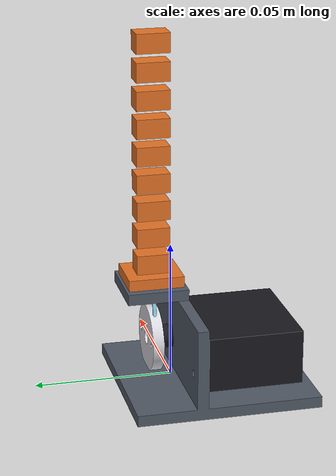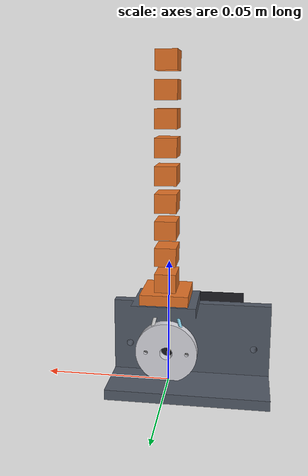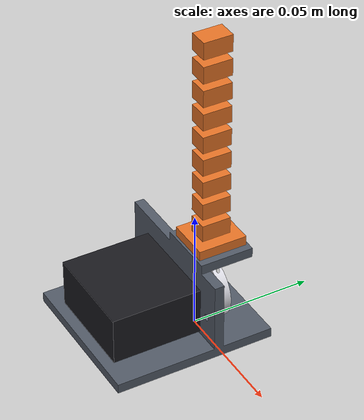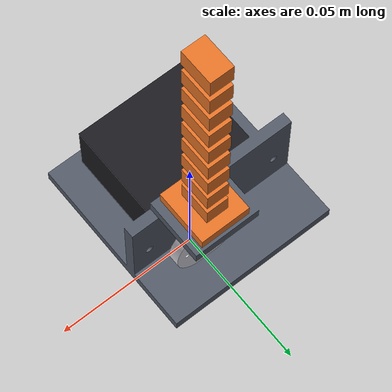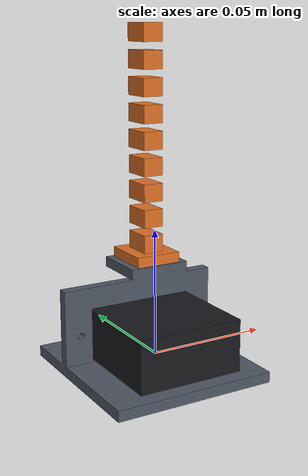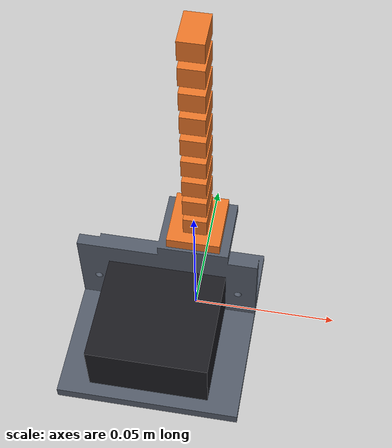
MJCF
<mujoco model="tendril_seg_viewer">
  <compiler meshdir="out" angle="radian" autolimits="true"/>
  <option gravity="0 0 0"/>
  <visual><global offwidth="960" offheight="720"/>
    <headlight ambient="0.45 0.45 0.45" diffuse="0.55 0.55 0.55" specular="0.1 0.1 0.1"/>
  </visual>
  <asset>
    <mesh name="mount" file="mount.stl" scale="0.001 0.001 0.001"/>
    <mesh name="servo" file="servo.stl" scale="0.001 0.001 0.001"/>
    <mesh name="horn"  file="horn.stl"  scale="0.001 0.001 0.001"/>
    <material name="pla"   rgba="0.32 0.35 0.40 1"/>
    <material name="servo" rgba="0.10 0.10 0.12 1"/>
    <material name="horn"  rgba="0.85 0.85 0.88 1"/>
    <material name="tpu"   rgba="0.90 0.45 0.15 1"/>
  </asset>

  <worldbody>
    <light pos="0.08 0.18 0.22" dir="-0.2 -0.4 -1"/>
    <camera name="iso" pos="0.16 0.16 0.12" xyaxes="-0.728 0.686 0 -0.130 -0.138 0.981"/>

    <geom type="mesh" mesh="mount" material="pla"   contype="0" conaffinity="0"/>
    <geom type="mesh" mesh="servo" material="servo" contype="0" conaffinity="0"/>

    <!-- static bolt flange of the finger (rigid, bolted to the shelf) -->
    <geom type="box" size="0.00900 0.01000 0.00200"
          pos="0 0.00700 0.03900" material="tpu" contype="0" conaffinity="0"/>

    <!-- deck string guides (align to the channels) -->
    <site name="guide_p" pos="0.00250 0.00700 0.03700" size="0.0008"/>
    <site name="guide_n" pos="-0.00250 0.00700 0.03700" size="0.0008"/>

    <!-- servo horn: spins about Y in the bending plane -->
    <body name="horn_body" pos="0 0.00700 0.01500">
      <joint name="joint_horn" type="hinge" axis="0 1 0"/>
      <geom type="mesh" mesh="horn" material="horn" contype="0" conaffinity="0"/>
      <site name="hole_p" pos="0.00800 0 0" size="0.0009"/>
      <site name="hole_n" pos="-0.00800 0 0" size="0.0009"/>
    </body>

    <!-- flexible finger: vertebra hinge-chain -->
    <body name="v0" pos="0 0.00700 0.04450"><geom type="box" size="0.00400 0.00600 0.00350" material="tpu"/><site name="entry_p" pos="0.00250 0 -0.00350" size="0.0008"/><site name="entry_n" pos="-0.00250 0 -0.00350" size="0.0008"/><body name="v1" pos="0 0 0.01000"><joint name="j0" type="hinge" axis="0 1 0" pos="0 0 -0.00150"/><geom type="box" size="0.00400 0.00600 0.00350" material="tpu"/><body name="v2" pos="0 0 0.01000"><joint name="j1" type="hinge" axis="0 1 0" pos="0 0 -0.00150"/><geom type="box" size="0.00400 0.00600 0.00350" material="tpu"/><body name="v3" pos="0 0 0.01000"><joint name="j2" type="hinge" axis="0 1 0" pos="0 0 -0.00150"/><geom type="box" size="0.00400 0.00600 0.00350" material="tpu"/><body name="v4" pos="0 0 0.01000"><joint name="j3" type="hinge" axis="0 1 0" pos="0 0 -0.00150"/><geom type="box" size="0.00400 0.00600 0.00350" material="tpu"/><body name="v5" pos="0 0 0.01000"><joint name="j4" type="hinge" axis="0 1 0" pos="0 0 -0.00150"/><geom type="box" size="0.00400 0.00600 0.00350" material="tpu"/><body name="v6" pos="0 0 0.01000"><joint name="j5" type="hinge" axis="0 1 0" pos="0 0 -0.00150"/><geom type="box" size="0.00400 0.00600 0.00350" material="tpu"/><body name="v7" pos="0 0 0.01000"><joint name="j6" type="hinge" axis="0 1 0" pos="0 0 -0.00150"/><geom type="box" size="0.00400 0.00600 0.00350" material="tpu"/><body name="v8" pos="0 0 0.01000"><joint name="j7" type="hinge" axis="0 1 0" pos="0 0 -0.00150"/><geom type="box" size="0.00400 0.00600 0.00350" material="tpu"/></body></body></body></body></body></body></body></body></body>
  </worldbody>

  <tendon>
    <spatial name="t_p" width="0.0007" rgba="0.95 0.95 0.95 1">
      <site site="hole_p"/><site site="guide_p"/><site site="entry_p"/></spatial>
    <spatial name="t_n" width="0.0007" rgba="0.55 0.85 0.95 1">
      <site site="hole_n"/><site site="guide_n"/><site site="entry_n"/></spatial>
  </tendon>
</mujoco>
